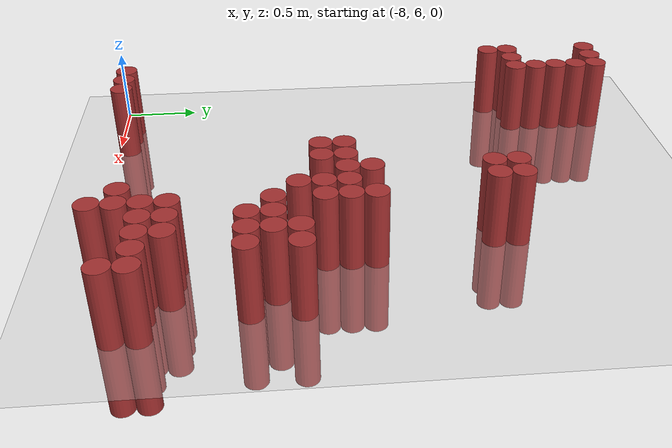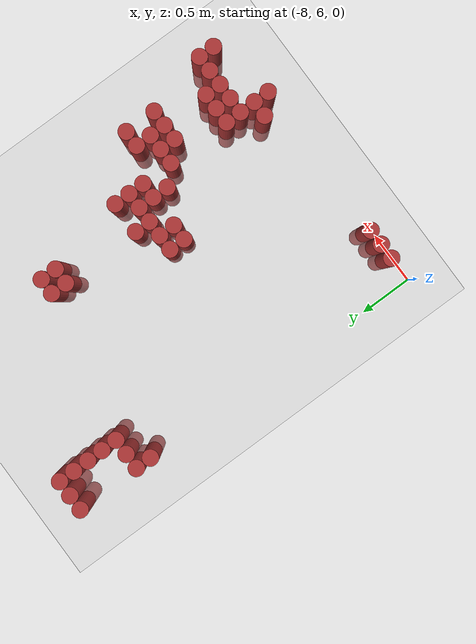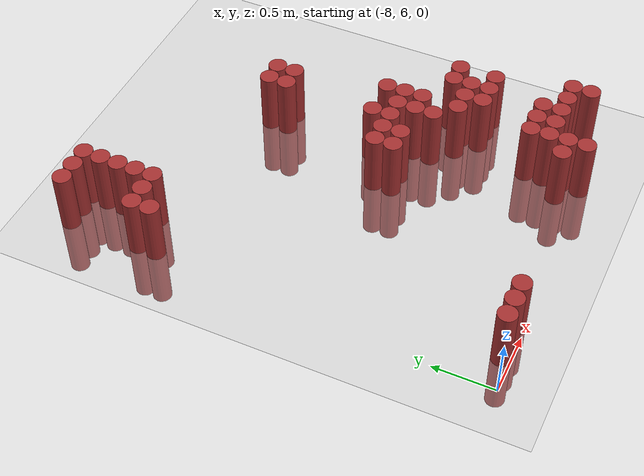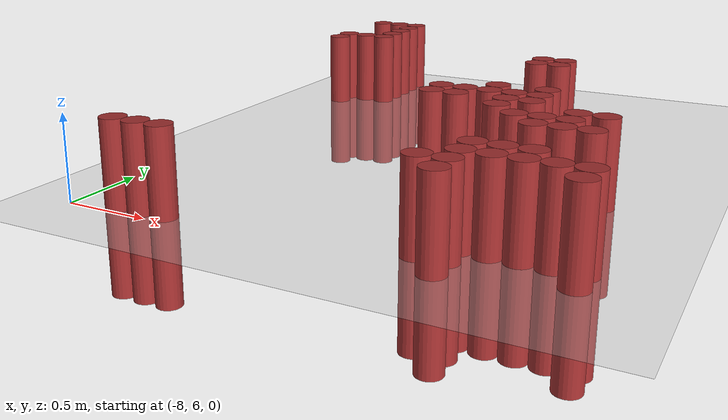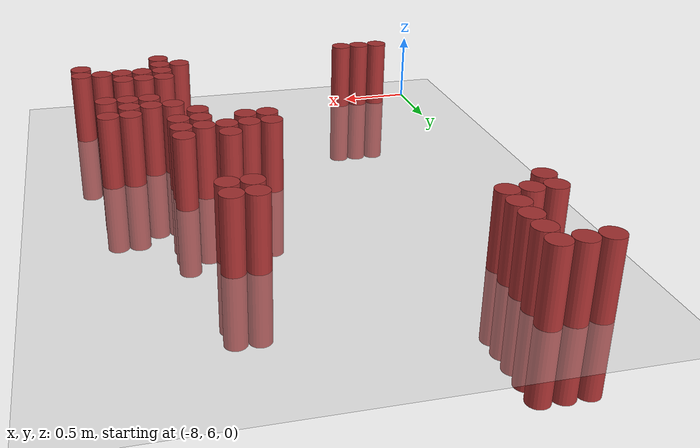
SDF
<sdf version="1.6">
 <world name="default">
  <model name="ground_plane">
   <static>1</static>
   <link name="link">
    <collision name="collision">
     <geometry><plane><normal>0 0 1</normal><size>100 100</size></plane></geometry>
     <surface><friction><ode><mu>100</mu><mu2>50</mu2></ode></friction></surface>
    </collision>
    <visual name="visual">
     <cast_shadows>0</cast_shadows>
     <geometry><plane><normal>0 0 1</normal><size>100 100</size></plane></geometry>
     <material>
      <script><uri>file://media/materials/scripts/gazebo.material</uri><name>Gazebo/Grey</name></script>
     </material>
    </visual>
   </link>
  </model>
  <model name="unit_cylinder_186">
   <static>1</static>
   <pose>-7.875000 8.775000 0.000000 0.000000 0.000000 0.000000</pose>
   <link name="link">
    <inertial>
     <mass>1</mass>
     <inertia><ixx>0.145833</ixx><ixy>0</ixy><ixz>0</ixz><iyy>0.145833</iyy><iyz>0</iyz><izz>0.125</izz></inertia>
    </inertial>
    <collision name="collision">
     <geometry><cylinder><radius>0.075000</radius><length>1</length></cylinder></geometry>
    </collision>
    <visual name="visual">
     <geometry><cylinder><radius>0.075000</radius><length>1</length></cylinder></geometry>
     <material>
      <ambient>0.648000 0.192000 0.192000 1</ambient>
      <diffuse>0.648000 0.192000 0.192000 1</diffuse>
     </material>
     <material>
      <script><name>Gazebo/Grey</name><uri>file://media/materials/scripts/gazebo.material</uri></script>
     </material>
    </visual>
   </link>
  </model>
  <model name="unit_cylinder_187">
   <static>1</static>
   <pose>-7.875000 8.925000 0.000000 0.000000 0.000000 0.000000</pose>
   <link name="link">
    <inertial>
     <mass>1</mass>
     <inertia><ixx>0.145833</ixx><ixy>0</ixy><ixz>0</ixz><iyy>0.145833</iyy><iyz>0</iyz><izz>0.125</izz></inertia>
    </inertial>
    <collision name="collision">
     <geometry><cylinder><radius>0.075000</radius><length>1</length></cylinder></geometry>
    </collision>
    <visual name="visual">
     <geometry><cylinder><radius>0.075000</radius><length>1</length></cylinder></geometry>
     <material>
      <ambient>0.648000 0.192000 0.192000 1</ambient>
      <diffuse>0.648000 0.192000 0.192000 1</diffuse>
     </material>
     <material>
      <script><name>Gazebo/Grey</name><uri>file://media/materials/scripts/gazebo.material</uri></script>
     </material>
    </visual>
   </link>
  </model>
  <model name="unit_cylinder_188">
   <static>1</static>
   <pose>-7.875000 9.525000 0.000000 0.000000 0.000000 0.000000</pose>
   <link name="link">
    <inertial>
     <mass>1</mass>
     <inertia><ixx>0.145833</ixx><ixy>0</ixy><ixz>0</ixz><iyy>0.145833</iyy><iyz>0</iyz><izz>0.125</izz></inertia>
    </inertial>
    <collision name="collision">
     <geometry><cylinder><radius>0.075000</radius><length>1</length></cylinder></geometry>
    </collision>
    <visual name="visual">
     <geometry><cylinder><radius>0.075000</radius><length>1</length></cylinder></geometry>
     <material>
      <ambient>0.648000 0.192000 0.192000 1</ambient>
      <diffuse>0.648000 0.192000 0.192000 1</diffuse>
     </material>
     <material>
      <script><name>Gazebo/Grey</name><uri>file://media/materials/scripts/gazebo.material</uri></script>
     </material>
    </visual>
   </link>
  </model>
  <model name="unit_cylinder_190">
   <static>1</static>
   <pose>-7.725000 6.075000 0.000000 0.000000 0.000000 0.000000</pose>
   <link name="link">
    <inertial>
     <mass>1</mass>
     <inertia><ixx>0.145833</ixx><ixy>0</ixy><ixz>0</ixz><iyy>0.145833</iyy><iyz>0</iyz><izz>0.125</izz></inertia>
    </inertial>
    <collision name="collision">
     <geometry><cylinder><radius>0.075000</radius><length>1</length></cylinder></geometry>
    </collision>
    <visual name="visual">
     <geometry><cylinder><radius>0.075000</radius><length>1</length></cylinder></geometry>
     <material>
      <ambient>0.648000 0.192000 0.192000 1</ambient>
      <diffuse>0.648000 0.192000 0.192000 1</diffuse>
     </material>
     <material>
      <script><name>Gazebo/Grey</name><uri>file://media/materials/scripts/gazebo.material</uri></script>
     </material>
    </visual>
   </link>
  </model>
  <model name="unit_cylinder_191">
   <static>1</static>
   <pose>-7.725000 8.925000 0.000000 0.000000 0.000000 0.000000</pose>
   <link name="link">
    <inertial>
     <mass>1</mass>
     <inertia><ixx>0.145833</ixx><ixy>0</ixy><ixz>0</ixz><iyy>0.145833</iyy><iyz>0</iyz><izz>0.125</izz></inertia>
    </inertial>
    <collision name="collision">
     <geometry><cylinder><radius>0.075000</radius><length>1</length></cylinder></geometry>
    </collision>
    <visual name="visual">
     <geometry><cylinder><radius>0.075000</radius><length>1</length></cylinder></geometry>
     <material>
      <ambient>0.648000 0.192000 0.192000 1</ambient>
      <diffuse>0.648000 0.192000 0.192000 1</diffuse>
     </material>
     <material>
      <script><name>Gazebo/Grey</name><uri>file://media/materials/scripts/gazebo.material</uri></script>
     </material>
    </visual>
   </link>
  </model>
  <model name="unit_cylinder_192">
   <static>1</static>
   <pose>-7.725000 9.525000 0.000000 0.000000 0.000000 0.000000</pose>
   <link name="link">
    <inertial>
     <mass>1</mass>
     <inertia><ixx>0.145833</ixx><ixy>0</ixy><ixz>0</ixz><iyy>0.145833</iyy><iyz>0</iyz><izz>0.125</izz></inertia>
    </inertial>
    <collision name="collision">
     <geometry><cylinder><radius>0.075000</radius><length>1</length></cylinder></geometry>
    </collision>
    <visual name="visual">
     <geometry><cylinder><radius>0.075000</radius><length>1</length></cylinder></geometry>
     <material>
      <ambient>0.648000 0.192000 0.192000 1</ambient>
      <diffuse>0.648000 0.192000 0.192000 1</diffuse>
     </material>
     <material>
      <script><name>Gazebo/Grey</name><uri>file://media/materials/scripts/gazebo.material</uri></script>
     </material>
    </visual>
   </link>
  </model>
  <model name="unit_cylinder_194">
   <static>1</static>
   <pose>-7.575000 6.075000 0.000000 0.000000 0.000000 0.000000</pose>
   <link name="link">
    <inertial>
     <mass>1</mass>
     <inertia><ixx>0.145833</ixx><ixy>0</ixy><ixz>0</ixz><iyy>0.145833</iyy><iyz>0</iyz><izz>0.125</izz></inertia>
    </inertial>
    <collision name="collision">
     <geometry><cylinder><radius>0.075000</radius><length>1</length></cylinder></geometry>
    </collision>
    <visual name="visual">
     <geometry><cylinder><radius>0.075000</radius><length>1</length></cylinder></geometry>
     <material>
      <ambient>0.648000 0.192000 0.192000 1</ambient>
      <diffuse>0.648000 0.192000 0.192000 1</diffuse>
     </material>
     <material>
      <script><name>Gazebo/Grey</name><uri>file://media/materials/scripts/gazebo.material</uri></script>
     </material>
    </visual>
   </link>
  </model>
  <model name="unit_cylinder_195">
   <static>1</static>
   <pose>-7.575000 8.925000 0.000000 0.000000 0.000000 0.000000</pose>
   <link name="link">
    <inertial>
     <mass>1</mass>
     <inertia><ixx>0.145833</ixx><ixy>0</ixy><ixz>0</ixz><iyy>0.145833</iyy><iyz>0</iyz><izz>0.125</izz></inertia>
    </inertial>
    <collision name="collision">
     <geometry><cylinder><radius>0.075000</radius><length>1</length></cylinder></geometry>
    </collision>
    <visual name="visual">
     <geometry><cylinder><radius>0.075000</radius><length>1</length></cylinder></geometry>
     <material>
      <ambient>0.648000 0.192000 0.192000 1</ambient>
      <diffuse>0.648000 0.192000 0.192000 1</diffuse>
     </material>
     <material>
      <script><name>Gazebo/Grey</name><uri>file://media/materials/scripts/gazebo.material</uri></script>
     </material>
    </visual>
   </link>
  </model>
  <model name="unit_cylinder_196">
   <static>1</static>
   <pose>-7.575000 9.075000 0.000000 0.000000 0.000000 0.000000</pose>
   <link name="link">
    <inertial>
     <mass>1</mass>
     <inertia><ixx>0.145833</ixx><ixy>0</ixy><ixz>0</ixz><iyy>0.145833</iyy><iyz>0</iyz><izz>0.125</izz></inertia>
    </inertial>
    <collision name="collision">
     <geometry><cylinder><radius>0.075000</radius><length>1</length></cylinder></geometry>
    </collision>
    <visual name="visual">
     <geometry><cylinder><radius>0.075000</radius><length>1</length></cylinder></geometry>
     <material>
      <ambient>0.648000 0.192000 0.192000 1</ambient>
      <diffuse>0.648000 0.192000 0.192000 1</diffuse>
     </material>
     <material>
      <script><name>Gazebo/Grey</name><uri>file://media/materials/scripts/gazebo.material</uri></script>
     </material>
    </visual>
   </link>
  </model>
  <model name="unit_cylinder_197">
   <static>1</static>
   <pose>-7.575000 9.225000 0.000000 0.000000 0.000000 0.000000</pose>
   <link name="link">
    <inertial>
     <mass>1</mass>
     <inertia><ixx>0.145833</ixx><ixy>0</ixy><ixz>0</ixz><iyy>0.145833</iyy><iyz>0</iyz><izz>0.125</izz></inertia>
    </inertial>
    <collision name="collision">
     <geometry><cylinder><radius>0.075000</radius><length>1</length></cylinder></geometry>
    </collision>
    <visual name="visual">
     <geometry><cylinder><radius>0.075000</radius><length>1</length></cylinder></geometry>
     <material>
      <ambient>0.648000 0.192000 0.192000 1</ambient>
      <diffuse>0.648000 0.192000 0.192000 1</diffuse>
     </material>
     <material>
      <script><name>Gazebo/Grey</name><uri>file://media/materials/scripts/gazebo.material</uri></script>
     </material>
    </visual>
   </link>
  </model>
  <model name="unit_cylinder_198">
   <static>1</static>
   <pose>-7.575000 9.375000 0.000000 0.000000 0.000000 0.000000</pose>
   <link name="link">
    <inertial>
     <mass>1</mass>
     <inertia><ixx>0.145833</ixx><ixy>0</ixy><ixz>0</ixz><iyy>0.145833</iyy><iyz>0</iyz><izz>0.125</izz></inertia>
    </inertial>
    <collision name="collision">
     <geometry><cylinder><radius>0.075000</radius><length>1</length></cylinder></geometry>
    </collision>
    <visual name="visual">
     <geometry><cylinder><radius>0.075000</radius><length>1</length></cylinder></geometry>
     <material>
      <ambient>0.648000 0.192000 0.192000 1</ambient>
      <diffuse>0.648000 0.192000 0.192000 1</diffuse>
     </material>
     <material>
      <script><name>Gazebo/Grey</name><uri>file://media/materials/scripts/gazebo.material</uri></script>
     </material>
    </visual>
   </link>
  </model>
  <model name="unit_cylinder_199">
   <static>1</static>
   <pose>-7.575000 9.525000 0.000000 0.000000 0.000000 0.000000</pose>
   <link name="link">
    <inertial>
     <mass>1</mass>
     <inertia><ixx>0.145833</ixx><ixy>0</ixy><ixz>0</ixz><iyy>0.145833</iyy><iyz>0</iyz><izz>0.125</izz></inertia>
    </inertial>
    <collision name="collision">
     <geometry><cylinder><radius>0.075000</radius><length>1</length></cylinder></geometry>
    </collision>
    <visual name="visual">
     <geometry><cylinder><radius>0.075000</radius><length>1</length></cylinder></geometry>
     <material>
      <ambient>0.648000 0.192000 0.192000 1</ambient>
      <diffuse>0.648000 0.192000 0.192000 1</diffuse>
     </material>
     <material>
      <script><name>Gazebo/Grey</name><uri>file://media/materials/scripts/gazebo.material</uri></script>
     </material>
    </visual>
   </link>
  </model>
  <model name="unit_cylinder_206">
   <static>1</static>
   <pose>-7.425000 6.075000 0.000000 0.000000 0.000000 0.000000</pose>
   <link name="link">
    <inertial>
     <mass>1</mass>
     <inertia><ixx>0.145833</ixx><ixy>0</ixy><ixz>0</ixz><iyy>0.145833</iyy><iyz>0</iyz><izz>0.125</izz></inertia>
    </inertial>
    <collision name="collision">
     <geometry><cylinder><radius>0.075000</radius><length>1</length></cylinder></geometry>
    </collision>
    <visual name="visual">
     <geometry><cylinder><radius>0.075000</radius><length>1</length></cylinder></geometry>
     <material>
      <ambient>0.648000 0.192000 0.192000 1</ambient>
      <diffuse>0.648000 0.192000 0.192000 1</diffuse>
     </material>
     <material>
      <script><name>Gazebo/Grey</name><uri>file://media/materials/scripts/gazebo.material</uri></script>
     </material>
    </visual>
   </link>
  </model>
  <model name="unit_cylinder_207">
   <static>1</static>
   <pose>-6.525000 7.425000 0.000000 0.000000 0.000000 0.000000</pose>
   <link name="link">
    <inertial>
     <mass>1</mass>
     <inertia><ixx>0.145833</ixx><ixy>0</ixy><ixz>0</ixz><iyy>0.145833</iyy><iyz>0</iyz><izz>0.125</izz></inertia>
    </inertial>
    <collision name="collision">
     <geometry><cylinder><radius>0.075000</radius><length>1</length></cylinder></geometry>
    </collision>
    <visual name="visual">
     <geometry><cylinder><radius>0.075000</radius><length>1</length></cylinder></geometry>
     <material>
      <ambient>0.648000 0.192000 0.192000 1</ambient>
      <diffuse>0.648000 0.192000 0.192000 1</diffuse>
     </material>
     <material>
      <script><name>Gazebo/Grey</name><uri>file://media/materials/scripts/gazebo.material</uri></script>
     </material>
    </visual>
   </link>
  </model>
  <model name="unit_cylinder_208">
   <static>1</static>
   <pose>-6.525000 7.575000 0.000000 0.000000 0.000000 0.000000</pose>
   <link name="link">
    <inertial>
     <mass>1</mass>
     <inertia><ixx>0.145833</ixx><ixy>0</ixy><ixz>0</ixz><iyy>0.145833</iyy><iyz>0</iyz><izz>0.125</izz></inertia>
    </inertial>
    <collision name="collision">
     <geometry><cylinder><radius>0.075000</radius><length>1</length></cylinder></geometry>
    </collision>
    <visual name="visual">
     <geometry><cylinder><radius>0.075000</radius><length>1</length></cylinder></geometry>
     <material>
      <ambient>0.648000 0.192000 0.192000 1</ambient>
      <diffuse>0.648000 0.192000 0.192000 1</diffuse>
     </material>
     <material>
      <script><name>Gazebo/Grey</name><uri>file://media/materials/scripts/gazebo.material</uri></script>
     </material>
    </visual>
   </link>
  </model>
  <model name="unit_cylinder_209">
   <static>1</static>
   <pose>-6.375000 7.425000 0.000000 0.000000 0.000000 0.000000</pose>
   <link name="link">
    <inertial>
     <mass>1</mass>
     <inertia><ixx>0.145833</ixx><ixy>0</ixy><ixz>0</ixz><iyy>0.145833</iyy><iyz>0</iyz><izz>0.125</izz></inertia>
    </inertial>
    <collision name="collision">
     <geometry><cylinder><radius>0.075000</radius><length>1</length></cylinder></geometry>
    </collision>
    <visual name="visual">
     <geometry><cylinder><radius>0.075000</radius><length>1</length></cylinder></geometry>
     <material>
      <ambient>0.648000 0.192000 0.192000 1</ambient>
      <diffuse>0.648000 0.192000 0.192000 1</diffuse>
     </material>
     <material>
      <script><name>Gazebo/Grey</name><uri>file://media/materials/scripts/gazebo.material</uri></script>
     </material>
    </visual>
   </link>
  </model>
  <model name="unit_cylinder_210">
   <static>1</static>
   <pose>-6.375000 7.575000 0.000000 0.000000 0.000000 0.000000</pose>
   <link name="link">
    <inertial>
     <mass>1</mass>
     <inertia><ixx>0.145833</ixx><ixy>0</ixy><ixz>0</ixz><iyy>0.145833</iyy><iyz>0</iyz><izz>0.125</izz></inertia>
    </inertial>
    <collision name="collision">
     <geometry><cylinder><radius>0.075000</radius><length>1</length></cylinder></geometry>
    </collision>
    <visual name="visual">
     <geometry><cylinder><radius>0.075000</radius><length>1</length></cylinder></geometry>
     <material>
      <ambient>0.648000 0.192000 0.192000 1</ambient>
      <diffuse>0.648000 0.192000 0.192000 1</diffuse>
     </material>
     <material>
      <script><name>Gazebo/Grey</name><uri>file://media/materials/scripts/gazebo.material</uri></script>
     </material>
    </visual>
   </link>
  </model>
  <model name="unit_cylinder_211">
   <static>1</static>
   <pose>-6.225000 7.575000 0.000000 0.000000 0.000000 0.000000</pose>
   <link name="link">
    <inertial>
     <mass>1</mass>
     <inertia><ixx>0.145833</ixx><ixy>0</ixy><ixz>0</ixz><iyy>0.145833</iyy><iyz>0</iyz><izz>0.125</izz></inertia>
    </inertial>
    <collision name="collision">
     <geometry><cylinder><radius>0.075000</radius><length>1</length></cylinder></geometry>
    </collision>
    <visual name="visual">
     <geometry><cylinder><radius>0.075000</radius><length>1</length></cylinder></geometry>
     <material>
      <ambient>0.648000 0.192000 0.192000 1</ambient>
      <diffuse>0.648000 0.192000 0.192000 1</diffuse>
     </material>
     <material>
      <script><name>Gazebo/Grey</name><uri>file://media/materials/scripts/gazebo.material</uri></script>
     </material>
    </visual>
   </link>
  </model>
  <model name="unit_cylinder_212">
   <static>1</static>
   <pose>-6.225000 7.725000 0.000000 0.000000 0.000000 0.000000</pose>
   <link name="link">
    <inertial>
     <mass>1</mass>
     <inertia><ixx>0.145833</ixx><ixy>0</ixy><ixz>0</ixz><iyy>0.145833</iyy><iyz>0</iyz><izz>0.125</izz></inertia>
    </inertial>
    <collision name="collision">
     <geometry><cylinder><radius>0.075000</radius><length>1</length></cylinder></geometry>
    </collision>
    <visual name="visual">
     <geometry><cylinder><radius>0.075000</radius><length>1</length></cylinder></geometry>
     <material>
      <ambient>0.648000 0.192000 0.192000 1</ambient>
      <diffuse>0.648000 0.192000 0.192000 1</diffuse>
     </material>
     <material>
      <script><name>Gazebo/Grey</name><uri>file://media/materials/scripts/gazebo.material</uri></script>
     </material>
    </visual>
   </link>
  </model>
  <model name="unit_cylinder_213">
   <static>1</static>
   <pose>-6.225000 8.475000 0.000000 0.000000 0.000000 0.000000</pose>
   <link name="link">
    <inertial>
     <mass>1</mass>
     <inertia><ixx>0.145833</ixx><ixy>0</ixy><ixz>0</ixz><iyy>0.145833</iyy><iyz>0</iyz><izz>0.125</izz></inertia>
    </inertial>
    <collision name="collision">
     <geometry><cylinder><radius>0.075000</radius><length>1</length></cylinder></geometry>
    </collision>
    <visual name="visual">
     <geometry><cylinder><radius>0.075000</radius><length>1</length></cylinder></geometry>
     <material>
      <ambient>0.648000 0.192000 0.192000 1</ambient>
      <diffuse>0.648000 0.192000 0.192000 1</diffuse>
     </material>
     <material>
      <script><name>Gazebo/Grey</name><uri>file://media/materials/scripts/gazebo.material</uri></script>
     </material>
    </visual>
   </link>
  </model>
  <model name="unit_cylinder_214">
   <static>1</static>
   <pose>-6.225000 8.625000 0.000000 0.000000 0.000000 0.000000</pose>
   <link name="link">
    <inertial>
     <mass>1</mass>
     <inertia><ixx>0.145833</ixx><ixy>0</ixy><ixz>0</ixz><iyy>0.145833</iyy><iyz>0</iyz><izz>0.125</izz></inertia>
    </inertial>
    <collision name="collision">
     <geometry><cylinder><radius>0.075000</radius><length>1</length></cylinder></geometry>
    </collision>
    <visual name="visual">
     <geometry><cylinder><radius>0.075000</radius><length>1</length></cylinder></geometry>
     <material>
      <ambient>0.648000 0.192000 0.192000 1</ambient>
      <diffuse>0.648000 0.192000 0.192000 1</diffuse>
     </material>
     <material>
      <script><name>Gazebo/Grey</name><uri>file://media/materials/scripts/gazebo.material</uri></script>
     </material>
    </visual>
   </link>
  </model>
  <model name="unit_cylinder_215">
   <static>1</static>
   <pose>-6.075000 6.225000 0.000000 0.000000 0.000000 0.000000</pose>
   <link name="link">
    <inertial>
     <mass>1</mass>
     <inertia><ixx>0.145833</ixx><ixy>0</ixy><ixz>0</ixz><iyy>0.145833</iyy><iyz>0</iyz><izz>0.125</izz></inertia>
    </inertial>
    <collision name="collision">
     <geometry><cylinder><radius>0.075000</radius><length>1</length></cylinder></geometry>
    </collision>
    <visual name="visual">
     <geometry><cylinder><radius>0.075000</radius><length>1</length></cylinder></geometry>
     <material>
      <ambient>0.648000 0.192000 0.192000 1</ambient>
      <diffuse>0.648000 0.192000 0.192000 1</diffuse>
     </material>
     <material>
      <script><name>Gazebo/Grey</name><uri>file://media/materials/scripts/gazebo.material</uri></script>
     </material>
    </visual>
   </link>
  </model>
  <model name="unit_cylinder_216">
   <static>1</static>
   <pose>-6.075000 7.275000 0.000000 0.000000 0.000000 0.000000</pose>
   <link name="link">
    <inertial>
     <mass>1</mass>
     <inertia><ixx>0.145833</ixx><ixy>0</ixy><ixz>0</ixz><iyy>0.145833</iyy><iyz>0</iyz><izz>0.125</izz></inertia>
    </inertial>
    <collision name="collision">
     <geometry><cylinder><radius>0.075000</radius><length>1</length></cylinder></geometry>
    </collision>
    <visual name="visual">
     <geometry><cylinder><radius>0.075000</radius><length>1</length></cylinder></geometry>
     <material>
      <ambient>0.648000 0.192000 0.192000 1</ambient>
      <diffuse>0.648000 0.192000 0.192000 1</diffuse>
     </material>
     <material>
      <script><name>Gazebo/Grey</name><uri>file://media/materials/scripts/gazebo.material</uri></script>
     </material>
    </visual>
   </link>
  </model>
  <model name="unit_cylinder_217">
   <static>1</static>
   <pose>-6.075000 7.425000 0.000000 0.000000 0.000000 0.000000</pose>
   <link name="link">
    <inertial>
     <mass>1</mass>
     <inertia><ixx>0.145833</ixx><ixy>0</ixy><ixz>0</ixz><iyy>0.145833</iyy><iyz>0</iyz><izz>0.125</izz></inertia>
    </inertial>
    <collision name="collision">
     <geometry><cylinder><radius>0.075000</radius><length>1</length></cylinder></geometry>
    </collision>
    <visual name="visual">
     <geometry><cylinder><radius>0.075000</radius><length>1</length></cylinder></geometry>
     <material>
      <ambient>0.648000 0.192000 0.192000 1</ambient>
      <diffuse>0.648000 0.192000 0.192000 1</diffuse>
     </material>
     <material>
      <script><name>Gazebo/Grey</name><uri>file://media/materials/scripts/gazebo.material</uri></script>
     </material>
    </visual>
   </link>
  </model>
  <model name="unit_cylinder_218">
   <static>1</static>
   <pose>-6.075000 7.575000 0.000000 0.000000 0.000000 0.000000</pose>
   <link name="link">
    <inertial>
     <mass>1</mass>
     <inertia><ixx>0.145833</ixx><ixy>0</ixy><ixz>0</ixz><iyy>0.145833</iyy><iyz>0</iyz><izz>0.125</izz></inertia>
    </inertial>
    <collision name="collision">
     <geometry><cylinder><radius>0.075000</radius><length>1</length></cylinder></geometry>
    </collision>
    <visual name="visual">
     <geometry><cylinder><radius>0.075000</radius><length>1</length></cylinder></geometry>
     <material>
      <ambient>0.648000 0.192000 0.192000 1</ambient>
      <diffuse>0.648000 0.192000 0.192000 1</diffuse>
     </material>
     <material>
      <script><name>Gazebo/Grey</name><uri>file://media/materials/scripts/gazebo.material</uri></script>
     </material>
    </visual>
   </link>
  </model>
  <model name="unit_cylinder_219">
   <static>1</static>
   <pose>-6.075000 8.475000 0.000000 0.000000 0.000000 0.000000</pose>
   <link name="link">
    <inertial>
     <mass>1</mass>
     <inertia><ixx>0.145833</ixx><ixy>0</ixy><ixz>0</ixz><iyy>0.145833</iyy><iyz>0</iyz><izz>0.125</izz></inertia>
    </inertial>
    <collision name="collision">
     <geometry><cylinder><radius>0.075000</radius><length>1</length></cylinder></geometry>
    </collision>
    <visual name="visual">
     <geometry><cylinder><radius>0.075000</radius><length>1</length></cylinder></geometry>
     <material>
      <ambient>0.648000 0.192000 0.192000 1</ambient>
      <diffuse>0.648000 0.192000 0.192000 1</diffuse>
     </material>
     <material>
      <script><name>Gazebo/Grey</name><uri>file://media/materials/scripts/gazebo.material</uri></script>
     </material>
    </visual>
   </link>
  </model>
  <model name="unit_cylinder_220">
   <static>1</static>
   <pose>-6.075000 8.625000 0.000000 0.000000 0.000000 0.000000</pose>
   <link name="link">
    <inertial>
     <mass>1</mass>
     <inertia><ixx>0.145833</ixx><ixy>0</ixy><ixz>0</ixz><iyy>0.145833</iyy><iyz>0</iyz><izz>0.125</izz></inertia>
    </inertial>
    <collision name="collision">
     <geometry><cylinder><radius>0.075000</radius><length>1</length></cylinder></geometry>
    </collision>
    <visual name="visual">
     <geometry><cylinder><radius>0.075000</radius><length>1</length></cylinder></geometry>
     <material>
      <ambient>0.648000 0.192000 0.192000 1</ambient>
      <diffuse>0.648000 0.192000 0.192000 1</diffuse>
     </material>
     <material>
      <script><name>Gazebo/Grey</name><uri>file://media/materials/scripts/gazebo.material</uri></script>
     </material>
    </visual>
   </link>
  </model>
  <model name="unit_cylinder_223">
   <static>1</static>
   <pose>-5.925000 6.075000 0.000000 0.000000 0.000000 0.000000</pose>
   <link name="link">
    <inertial>
     <mass>1</mass>
     <inertia><ixx>0.145833</ixx><ixy>0</ixy><ixz>0</ixz><iyy>0.145833</iyy><iyz>0</iyz><izz>0.125</izz></inertia>
    </inertial>
    <collision name="collision">
     <geometry><cylinder><radius>0.075000</radius><length>1</length></cylinder></geometry>
    </collision>
    <visual name="visual">
     <geometry><cylinder><radius>0.075000</radius><length>1</length></cylinder></geometry>
     <material>
      <ambient>0.648000 0.192000 0.192000 1</ambient>
      <diffuse>0.648000 0.192000 0.192000 1</diffuse>
     </material>
     <material>
      <script><name>Gazebo/Grey</name><uri>file://media/materials/scripts/gazebo.material</uri></script>
     </material>
    </visual>
   </link>
  </model>
  <model name="unit_cylinder_224">
   <static>1</static>
   <pose>-5.925000 6.225000 0.000000 0.000000 0.000000 0.000000</pose>
   <link name="link">
    <inertial>
     <mass>1</mass>
     <inertia><ixx>0.145833</ixx><ixy>0</ixy><ixz>0</ixz><iyy>0.145833</iyy><iyz>0</iyz><izz>0.125</izz></inertia>
    </inertial>
    <collision name="collision">
     <geometry><cylinder><radius>0.075000</radius><length>1</length></cylinder></geometry>
    </collision>
    <visual name="visual">
     <geometry><cylinder><radius>0.075000</radius><length>1</length></cylinder></geometry>
     <material>
      <ambient>0.648000 0.192000 0.192000 1</ambient>
      <diffuse>0.648000 0.192000 0.192000 1</diffuse>
     </material>
     <material>
      <script><name>Gazebo/Grey</name><uri>file://media/materials/scripts/gazebo.material</uri></script>
     </material>
    </visual>
   </link>
  </model>
  <model name="unit_cylinder_225">
   <static>1</static>
   <pose>-5.925000 6.375000 0.000000 0.000000 0.000000 0.000000</pose>
   <link name="link">
    <inertial>
     <mass>1</mass>
     <inertia><ixx>0.145833</ixx><ixy>0</ixy><ixz>0</ixz><iyy>0.145833</iyy><iyz>0</iyz><izz>0.125</izz></inertia>
    </inertial>
    <collision name="collision">
     <geometry><cylinder><radius>0.075000</radius><length>1</length></cylinder></geometry>
    </collision>
    <visual name="visual">
     <geometry><cylinder><radius>0.075000</radius><length>1</length></cylinder></geometry>
     <material>
      <ambient>0.648000 0.192000 0.192000 1</ambient>
      <diffuse>0.648000 0.192000 0.192000 1</diffuse>
     </material>
     <material>
      <script><name>Gazebo/Grey</name><uri>file://media/materials/scripts/gazebo.material</uri></script>
     </material>
    </visual>
   </link>
  </model>
  <model name="unit_cylinder_226">
   <static>1</static>
   <pose>-5.925000 6.525000 0.000000 0.000000 0.000000 0.000000</pose>
   <link name="link">
    <inertial>
     <mass>1</mass>
     <inertia><ixx>0.145833</ixx><ixy>0</ixy><ixz>0</ixz><iyy>0.145833</iyy><iyz>0</iyz><izz>0.125</izz></inertia>
    </inertial>
    <collision name="collision">
     <geometry><cylinder><radius>0.075000</radius><length>1</length></cylinder></geometry>
    </collision>
    <visual name="visual">
     <geometry><cylinder><radius>0.075000</radius><length>1</length></cylinder></geometry>
     <material>
      <ambient>0.648000 0.192000 0.192000 1</ambient>
      <diffuse>0.648000 0.192000 0.192000 1</diffuse>
     </material>
     <material>
      <script><name>Gazebo/Grey</name><uri>file://media/materials/scripts/gazebo.material</uri></script>
     </material>
    </visual>
   </link>
  </model>
  <model name="unit_cylinder_227">
   <static>1</static>
   <pose>-5.925000 7.125000 0.000000 0.000000 0.000000 0.000000</pose>
   <link name="link">
    <inertial>
     <mass>1</mass>
     <inertia><ixx>0.145833</ixx><ixy>0</ixy><ixz>0</ixz><iyy>0.145833</iyy><iyz>0</iyz><izz>0.125</izz></inertia>
    </inertial>
    <collision name="collision">
     <geometry><cylinder><radius>0.075000</radius><length>1</length></cylinder></geometry>
    </collision>
    <visual name="visual">
     <geometry><cylinder><radius>0.075000</radius><length>1</length></cylinder></geometry>
     <material>
      <ambient>0.648000 0.192000 0.192000 1</ambient>
      <diffuse>0.648000 0.192000 0.192000 1</diffuse>
     </material>
     <material>
      <script><name>Gazebo/Grey</name><uri>file://media/materials/scripts/gazebo.material</uri></script>
     </material>
    </visual>
   </link>
  </model>
  <model name="unit_cylinder_228">
   <static>1</static>
   <pose>-5.925000 7.425000 0.000000 0.000000 0.000000 0.000000</pose>
   <link name="link">
    <inertial>
     <mass>1</mass>
     <inertia><ixx>0.145833</ixx><ixy>0</ixy><ixz>0</ixz><iyy>0.145833</iyy><iyz>0</iyz><izz>0.125</izz></inertia>
    </inertial>
    <collision name="collision">
     <geometry><cylinder><radius>0.075000</radius><length>1</length></cylinder></geometry>
    </collision>
    <visual name="visual">
     <geometry><cylinder><radius>0.075000</radius><length>1</length></cylinder></geometry>
     <material>
      <ambient>0.648000 0.192000 0.192000 1</ambient>
      <diffuse>0.648000 0.192000 0.192000 1</diffuse>
     </material>
     <material>
      <script><name>Gazebo/Grey</name><uri>file://media/materials/scripts/gazebo.material</uri></script>
     </material>
    </visual>
   </link>
  </model>
  <model name="unit_cylinder_229">
   <static>1</static>
   <pose>-5.925000 7.575000 0.000000 0.000000 0.000000 0.000000</pose>
   <link name="link">
    <inertial>
     <mass>1</mass>
     <inertia><ixx>0.145833</ixx><ixy>0</ixy><ixz>0</ixz><iyy>0.145833</iyy><iyz>0</iyz><izz>0.125</izz></inertia>
    </inertial>
    <collision name="collision">
     <geometry><cylinder><radius>0.075000</radius><length>1</length></cylinder></geometry>
    </collision>
    <visual name="visual">
     <geometry><cylinder><radius>0.075000</radius><length>1</length></cylinder></geometry>
     <material>
      <ambient>0.648000 0.192000 0.192000 1</ambient>
      <diffuse>0.648000 0.192000 0.192000 1</diffuse>
     </material>
     <material>
      <script><name>Gazebo/Grey</name><uri>file://media/materials/scripts/gazebo.material</uri></script>
     </material>
    </visual>
   </link>
  </model>
  <model name="unit_cylinder_230">
   <static>1</static>
   <pose>-5.925000 7.725000 0.000000 0.000000 0.000000 0.000000</pose>
   <link name="link">
    <inertial>
     <mass>1</mass>
     <inertia><ixx>0.145833</ixx><ixy>0</ixy><ixz>0</ixz><iyy>0.145833</iyy><iyz>0</iyz><izz>0.125</izz></inertia>
    </inertial>
    <collision name="collision">
     <geometry><cylinder><radius>0.075000</radius><length>1</length></cylinder></geometry>
    </collision>
    <visual name="visual">
     <geometry><cylinder><radius>0.075000</radius><length>1</length></cylinder></geometry>
     <material>
      <ambient>0.648000 0.192000 0.192000 1</ambient>
      <diffuse>0.648000 0.192000 0.192000 1</diffuse>
     </material>
     <material>
      <script><name>Gazebo/Grey</name><uri>file://media/materials/scripts/gazebo.material</uri></script>
     </material>
    </visual>
   </link>
  </model>
  <model name="unit_cylinder_235">
   <static>1</static>
   <pose>-5.775000 6.375000 0.000000 0.000000 0.000000 0.000000</pose>
   <link name="link">
    <inertial>
     <mass>1</mass>
     <inertia><ixx>0.145833</ixx><ixy>0</ixy><ixz>0</ixz><iyy>0.145833</iyy><iyz>0</iyz><izz>0.125</izz></inertia>
    </inertial>
    <collision name="collision">
     <geometry><cylinder><radius>0.075000</radius><length>1</length></cylinder></geometry>
    </collision>
    <visual name="visual">
     <geometry><cylinder><radius>0.075000</radius><length>1</length></cylinder></geometry>
     <material>
      <ambient>0.648000 0.192000 0.192000 1</ambient>
      <diffuse>0.648000 0.192000 0.192000 1</diffuse>
     </material>
     <material>
      <script><name>Gazebo/Grey</name><uri>file://media/materials/scripts/gazebo.material</uri></script>
     </material>
    </visual>
   </link>
  </model>
  <model name="unit_cylinder_236">
   <static>1</static>
   <pose>-5.775000 6.525000 0.000000 0.000000 0.000000 0.000000</pose>
   <link name="link">
    <inertial>
     <mass>1</mass>
     <inertia><ixx>0.145833</ixx><ixy>0</ixy><ixz>0</ixz><iyy>0.145833</iyy><iyz>0</iyz><izz>0.125</izz></inertia>
    </inertial>
    <collision name="collision">
     <geometry><cylinder><radius>0.075000</radius><length>1</length></cylinder></geometry>
    </collision>
    <visual name="visual">
     <geometry><cylinder><radius>0.075000</radius><length>1</length></cylinder></geometry>
     <material>
      <ambient>0.648000 0.192000 0.192000 1</ambient>
      <diffuse>0.648000 0.192000 0.192000 1</diffuse>
     </material>
     <material>
      <script><name>Gazebo/Grey</name><uri>file://media/materials/scripts/gazebo.material</uri></script>
     </material>
    </visual>
   </link>
  </model>
  <model name="unit_cylinder_237">
   <static>1</static>
   <pose>-5.775000 6.975000 0.000000 0.000000 0.000000 0.000000</pose>
   <link name="link">
    <inertial>
     <mass>1</mass>
     <inertia><ixx>0.145833</ixx><ixy>0</ixy><ixz>0</ixz><iyy>0.145833</iyy><iyz>0</iyz><izz>0.125</izz></inertia>
    </inertial>
    <collision name="collision">
     <geometry><cylinder><radius>0.075000</radius><length>1</length></cylinder></geometry>
    </collision>
    <visual name="visual">
     <geometry><cylinder><radius>0.075000</radius><length>1</length></cylinder></geometry>
     <material>
      <ambient>0.648000 0.192000 0.192000 1</ambient>
      <diffuse>0.648000 0.192000 0.192000 1</diffuse>
     </material>
     <material>
      <script><name>Gazebo/Grey</name><uri>file://media/materials/scripts/gazebo.material</uri></script>
     </material>
    </visual>
   </link>
  </model>
  <model name="unit_cylinder_238">
   <static>1</static>
   <pose>-5.775000 7.125000 0.000000 0.000000 0.000000 0.000000</pose>
   <link name="link">
    <inertial>
     <mass>1</mass>
     <inertia><ixx>0.145833</ixx><ixy>0</ixy><ixz>0</ixz><iyy>0.145833</iyy><iyz>0</iyz><izz>0.125</izz></inertia>
    </inertial>
    <collision name="collision">
     <geometry><cylinder><radius>0.075000</radius><length>1</length></cylinder></geometry>
    </collision>
    <visual name="visual">
     <geometry><cylinder><radius>0.075000</radius><length>1</length></cylinder></geometry>
     <material>
      <ambient>0.648000 0.192000 0.192000 1</ambient>
      <diffuse>0.648000 0.192000 0.192000 1</diffuse>
     </material>
     <material>
      <script><name>Gazebo/Grey</name><uri>file://media/materials/scripts/gazebo.material</uri></script>
     </material>
    </visual>
   </link>
  </model>
  <model name="unit_cylinder_242">
   <static>1</static>
   <pose>-5.625000 6.375000 0.000000 0.000000 0.000000 0.000000</pose>
   <link name="link">
    <inertial>
     <mass>1</mass>
     <inertia><ixx>0.145833</ixx><ixy>0</ixy><ixz>0</ixz><iyy>0.145833</iyy><iyz>0</iyz><izz>0.125</izz></inertia>
    </inertial>
    <collision name="collision">
     <geometry><cylinder><radius>0.075000</radius><length>1</length></cylinder></geometry>
    </collision>
    <visual name="visual">
     <geometry><cylinder><radius>0.075000</radius><length>1</length></cylinder></geometry>
     <material>
      <ambient>0.648000 0.192000 0.192000 1</ambient>
      <diffuse>0.648000 0.192000 0.192000 1</diffuse>
     </material>
     <material>
      <script><name>Gazebo/Grey</name><uri>file://media/materials/scripts/gazebo.material</uri></script>
     </material>
    </visual>
   </link>
  </model>
  <model name="unit_cylinder_243">
   <static>1</static>
   <pose>-5.625000 6.525000 0.000000 0.000000 0.000000 0.000000</pose>
   <link name="link">
    <inertial>
     <mass>1</mass>
     <inertia><ixx>0.145833</ixx><ixy>0</ixy><ixz>0</ixz><iyy>0.145833</iyy><iyz>0</iyz><izz>0.125</izz></inertia>
    </inertial>
    <collision name="collision">
     <geometry><cylinder><radius>0.075000</radius><length>1</length></cylinder></geometry>
    </collision>
    <visual name="visual">
     <geometry><cylinder><radius>0.075000</radius><length>1</length></cylinder></geometry>
     <material>
      <ambient>0.648000 0.192000 0.192000 1</ambient>
      <diffuse>0.648000 0.192000 0.192000 1</diffuse>
     </material>
     <material>
      <script><name>Gazebo/Grey</name><uri>file://media/materials/scripts/gazebo.material</uri></script>
     </material>
    </visual>
   </link>
  </model>
  <model name="unit_cylinder_244">
   <static>1</static>
   <pose>-5.625000 6.975000 0.000000 0.000000 0.000000 0.000000</pose>
   <link name="link">
    <inertial>
     <mass>1</mass>
     <inertia><ixx>0.145833</ixx><ixy>0</ixy><ixz>0</ixz><iyy>0.145833</iyy><iyz>0</iyz><izz>0.125</izz></inertia>
    </inertial>
    <collision name="collision">
     <geometry><cylinder><radius>0.075000</radius><length>1</length></cylinder></geometry>
    </collision>
    <visual name="visual">
     <geometry><cylinder><radius>0.075000</radius><length>1</length></cylinder></geometry>
     <material>
      <ambient>0.648000 0.192000 0.192000 1</ambient>
      <diffuse>0.648000 0.192000 0.192000 1</diffuse>
     </material>
     <material>
      <script><name>Gazebo/Grey</name><uri>file://media/materials/scripts/gazebo.material</uri></script>
     </material>
    </visual>
   </link>
  </model>
  <model name="unit_cylinder_245">
   <static>1</static>
   <pose>-5.625000 7.125000 0.000000 0.000000 0.000000 0.000000</pose>
   <link name="link">
    <inertial>
     <mass>1</mass>
     <inertia><ixx>0.145833</ixx><ixy>0</ixy><ixz>0</ixz><iyy>0.145833</iyy><iyz>0</iyz><izz>0.125</izz></inertia>
    </inertial>
    <collision name="collision">
     <geometry><cylinder><radius>0.075000</radius><length>1</length></cylinder></geometry>
    </collision>
    <visual name="visual">
     <geometry><cylinder><radius>0.075000</radius><length>1</length></cylinder></geometry>
     <material>
      <ambient>0.648000 0.192000 0.192000 1</ambient>
      <diffuse>0.648000 0.192000 0.192000 1</diffuse>
     </material>
     <material>
      <script><name>Gazebo/Grey</name><uri>file://media/materials/scripts/gazebo.material</uri></script>
     </material>
    </visual>
   </link>
  </model>
  <model name="unit_cylinder_246">
   <static>1</static>
   <pose>-5.625000 7.275000 0.000000 0.000000 0.000000 0.000000</pose>
   <link name="link">
    <inertial>
     <mass>1</mass>
     <inertia><ixx>0.145833</ixx><ixy>0</ixy><ixz>0</ixz><iyy>0.145833</iyy><iyz>0</iyz><izz>0.125</izz></inertia>
    </inertial>
    <collision name="collision">
     <geometry><cylinder><radius>0.075000</radius><length>1</length></cylinder></geometry>
    </collision>
    <visual name="visual">
     <geometry><cylinder><radius>0.075000</radius><length>1</length></cylinder></geometry>
     <material>
      <ambient>0.648000 0.192000 0.192000 1</ambient>
      <diffuse>0.648000 0.192000 0.192000 1</diffuse>
     </material>
     <material>
      <script><name>Gazebo/Grey</name><uri>file://media/materials/scripts/gazebo.material</uri></script>
     </material>
    </visual>
   </link>
  </model>
  <model name="unit_cylinder_249">
   <static>1</static>
   <pose>-5.475000 6.375000 0.000000 0.000000 0.000000 0.000000</pose>
   <link name="link">
    <inertial>
     <mass>1</mass>
     <inertia><ixx>0.145833</ixx><ixy>0</ixy><ixz>0</ixz><iyy>0.145833</iyy><iyz>0</iyz><izz>0.125</izz></inertia>
    </inertial>
    <collision name="collision">
     <geometry><cylinder><radius>0.075000</radius><length>1</length></cylinder></geometry>
    </collision>
    <visual name="visual">
     <geometry><cylinder><radius>0.075000</radius><length>1</length></cylinder></geometry>
     <material>
      <ambient>0.648000 0.192000 0.192000 1</ambient>
      <diffuse>0.648000 0.192000 0.192000 1</diffuse>
     </material>
     <material>
      <script><name>Gazebo/Grey</name><uri>file://media/materials/scripts/gazebo.material</uri></script>
     </material>
    </visual>
   </link>
  </model>
  <model name="unit_cylinder_250">
   <static>1</static>
   <pose>-5.475000 6.975000 0.000000 0.000000 0.000000 0.000000</pose>
   <link name="link">
    <inertial>
     <mass>1</mass>
     <inertia><ixx>0.145833</ixx><ixy>0</ixy><ixz>0</ixz><iyy>0.145833</iyy><iyz>0</iyz><izz>0.125</izz></inertia>
    </inertial>
    <collision name="collision">
     <geometry><cylinder><radius>0.075000</radius><length>1</length></cylinder></geometry>
    </collision>
    <visual name="visual">
     <geometry><cylinder><radius>0.075000</radius><length>1</length></cylinder></geometry>
     <material>
      <ambient>0.648000 0.192000 0.192000 1</ambient>
      <diffuse>0.648000 0.192000 0.192000 1</diffuse>
     </material>
     <material>
      <script><name>Gazebo/Grey</name><uri>file://media/materials/scripts/gazebo.material</uri></script>
     </material>
    </visual>
   </link>
  </model>
  <model name="unit_cylinder_251">
   <static>1</static>
   <pose>-5.475000 7.275000 0.000000 0.000000 0.000000 0.000000</pose>
   <link name="link">
    <inertial>
     <mass>1</mass>
     <inertia><ixx>0.145833</ixx><ixy>0</ixy><ixz>0</ixz><iyy>0.145833</iyy><iyz>0</iyz><izz>0.125</izz></inertia>
    </inertial>
    <collision name="collision">
     <geometry><cylinder><radius>0.075000</radius><length>1</length></cylinder></geometry>
    </collision>
    <visual name="visual">
     <geometry><cylinder><radius>0.075000</radius><length>1</length></cylinder></geometry>
     <material>
      <ambient>0.648000 0.192000 0.192000 1</ambient>
      <diffuse>0.648000 0.192000 0.192000 1</diffuse>
     </material>
     <material>
      <script><name>Gazebo/Grey</name><uri>file://media/materials/scripts/gazebo.material</uri></script>
     </material>
    </visual>
   </link>
  </model>
  <model name="unit_cylinder_254">
   <static>1</static>
   <pose>-5.325000 6.225000 0.000000 0.000000 0.000000 0.000000</pose>
   <link name="link">
    <inertial>
     <mass>1</mass>
     <inertia><ixx>0.145833</ixx><ixy>0</ixy><ixz>0</ixz><iyy>0.145833</iyy><iyz>0</iyz><izz>0.125</izz></inertia>
    </inertial>
    <collision name="collision">
     <geometry><cylinder><radius>0.075000</radius><length>1</length></cylinder></geometry>
    </collision>
    <visual name="visual">
     <geometry><cylinder><radius>0.075000</radius><length>1</length></cylinder></geometry>
     <material>
      <ambient>0.648000 0.192000 0.192000 1</ambient>
      <diffuse>0.648000 0.192000 0.192000 1</diffuse>
     </material>
     <material>
      <script><name>Gazebo/Grey</name><uri>file://media/materials/scripts/gazebo.material</uri></script>
     </material>
    </visual>
   </link>
  </model>
  <model name="unit_cylinder_255">
   <static>1</static>
   <pose>-5.325000 6.375000 0.000000 0.000000 0.000000 0.000000</pose>
   <link name="link">
    <inertial>
     <mass>1</mass>
     <inertia><ixx>0.145833</ixx><ixy>0</ixy><ixz>0</ixz><iyy>0.145833</iyy><iyz>0</iyz><izz>0.125</izz></inertia>
    </inertial>
    <collision name="collision">
     <geometry><cylinder><radius>0.075000</radius><length>1</length></cylinder></geometry>
    </collision>
    <visual name="visual">
     <geometry><cylinder><radius>0.075000</radius><length>1</length></cylinder></geometry>
     <material>
      <ambient>0.648000 0.192000 0.192000 1</ambient>
      <diffuse>0.648000 0.192000 0.192000 1</diffuse>
     </material>
     <material>
      <script><name>Gazebo/Grey</name><uri>file://media/materials/scripts/gazebo.material</uri></script>
     </material>
    </visual>
   </link>
  </model>
 </world>
</sdf>
